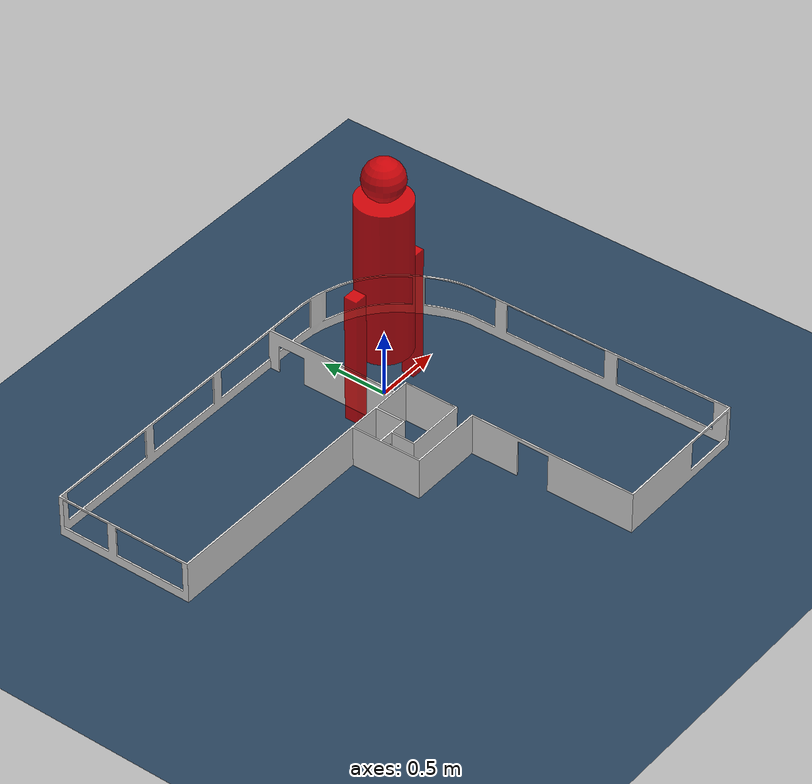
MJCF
<mujoco model="g1_office_environment">
  <compiler angle="radian" meshdir="." autolimits="true"/>

  <statistic center="0 0 1" extent="4"/>

  <visual>
    <headlight diffuse="0.6 0.6 0.6" ambient="0.3 0.3 0.3" specular="0 0 0"/>
    <rgba haze="0.15 0.25 0.35 1"/>
    <global azimuth="-130" elevation="-20"/>
  </visual>

  <default>
    <default class="visual">
      <geom group="2" type="mesh" contype="0" conaffinity="0"/>
    </default>
    <default class="collision">
      <geom group="3" type="mesh"/>
    </default>
  </default>

  <asset>
    <texture type="skybox" builtin="gradient" rgb1="0.3 0.5 0.7" rgb2="0 0 0" width="512" height="3072"/>
    <texture type="2d" name="groundplane" builtin="checker" mark="edge" rgb1="0.2 0.3 0.4" rgb2="0.1 0.2 0.3"
      markrgb="0.8 0.8 0.8" width="300" height="300"/>
    <material name="groundplane" texture="groundplane" texuniform="true" texrepeat="5 5" reflectance="0.2"/>
    <material name="wall" rgba="0.9 0.9 0.9 1" specular="0.1"/>

    <!-- Paredes do escritório -->
    <mesh name="office_walls" file="3d escritorio/body1_structure/body1_structure.obj" scale="0.001 0.001 0.001"/>
  </asset>

  <worldbody>
    <!-- Iluminação -->
    <light pos="0 0 5" dir="0 0 -1" directional="true"/>

    <!-- Chão -->
    <geom name="floor" size="10 10 0.05" type="plane" material="groundplane"/>

    <!-- Paredes do escritório -->
    <body name="walls" pos="-0.573 -0.700 0">
      <geom name="office_walls_geom" mesh="office_walls" class="visual" material="wall"/>
    </body>

    <!-- Robô G1 - copiar estrutura básica -->
    <body name="g1_robot" pos="0 0 1">
      <!-- Marcador temporário para o robô -->
      <geom type="cylinder" size="0.2 0.6" rgba="1 0 0 0.8"/>
      <geom type="sphere" size="0.15" pos="0 0 0.75" rgba="1 0 0 0.8"/>
      <geom type="box" size="0.05 0.05 0.5" pos="0.3 0 -0.5" rgba="1 0 0 0.8"/>
      <geom type="box" size="0.05 0.05 0.5" pos="-0.3 0 -0.5" rgba="1 0 0 0.8"/>
    </body>
  </worldbody>
</mujoco>
